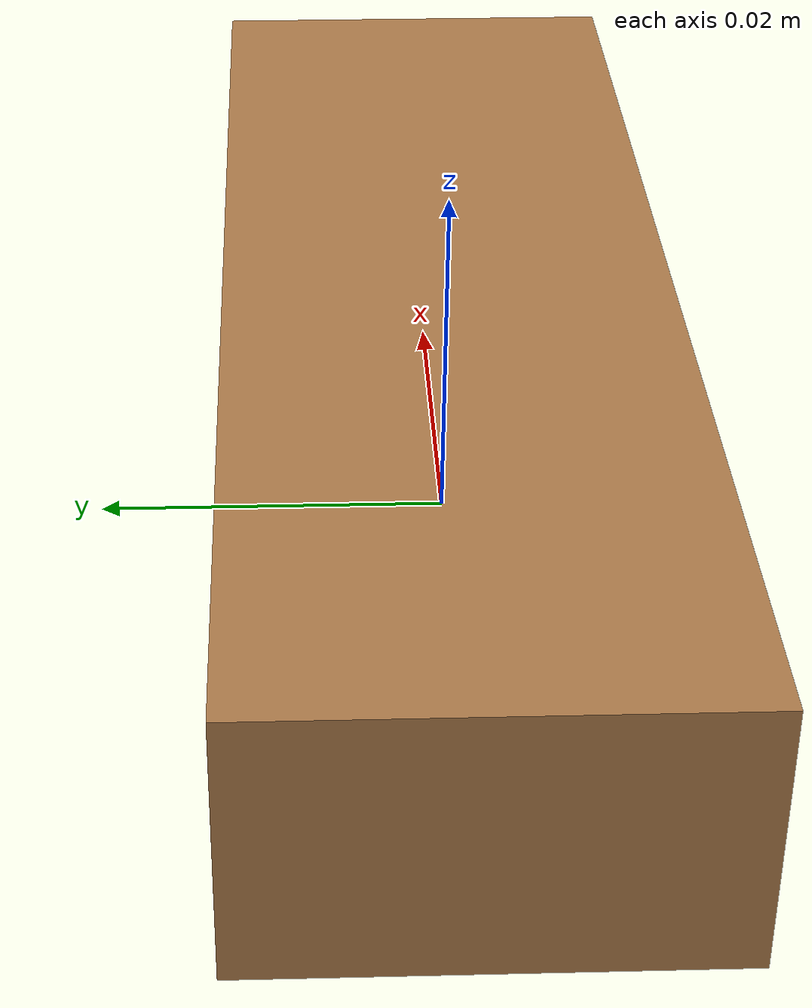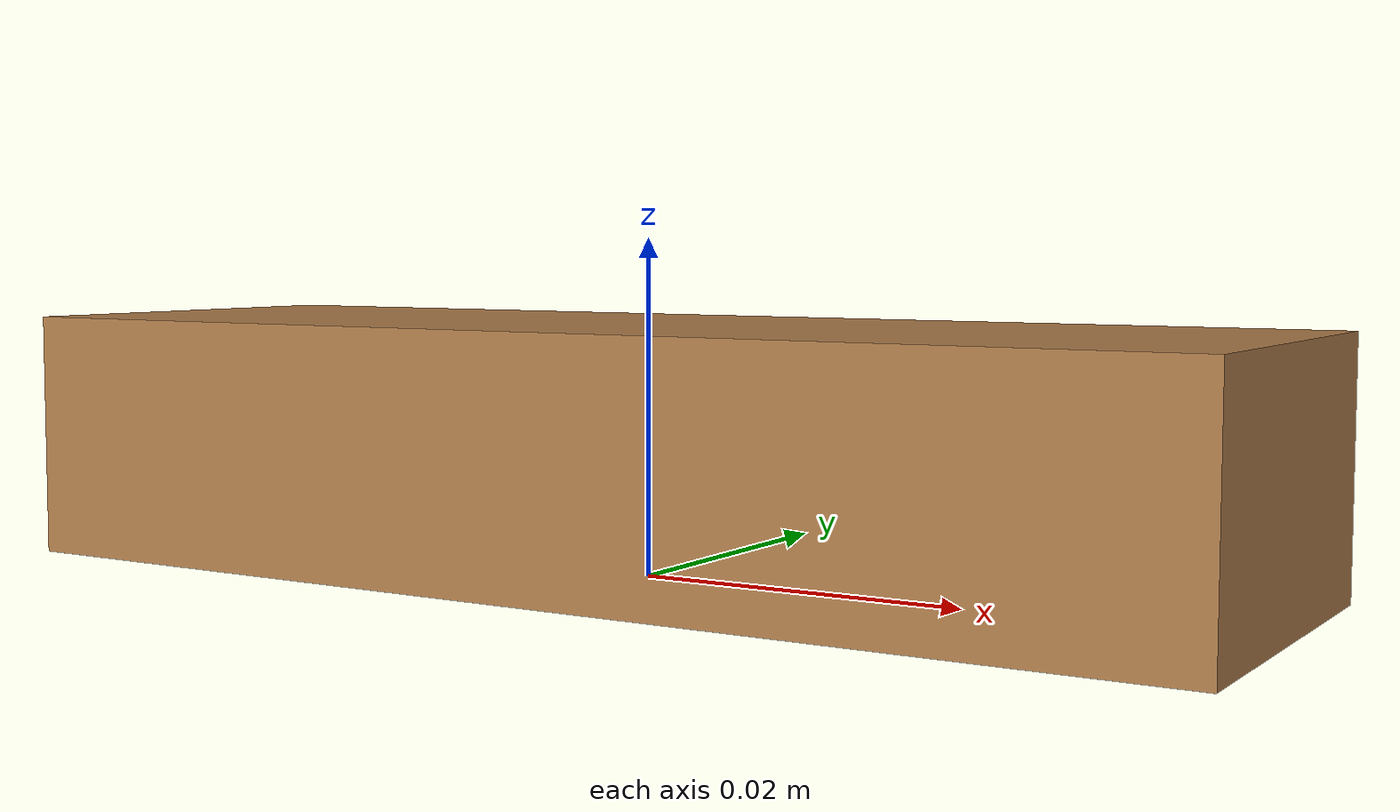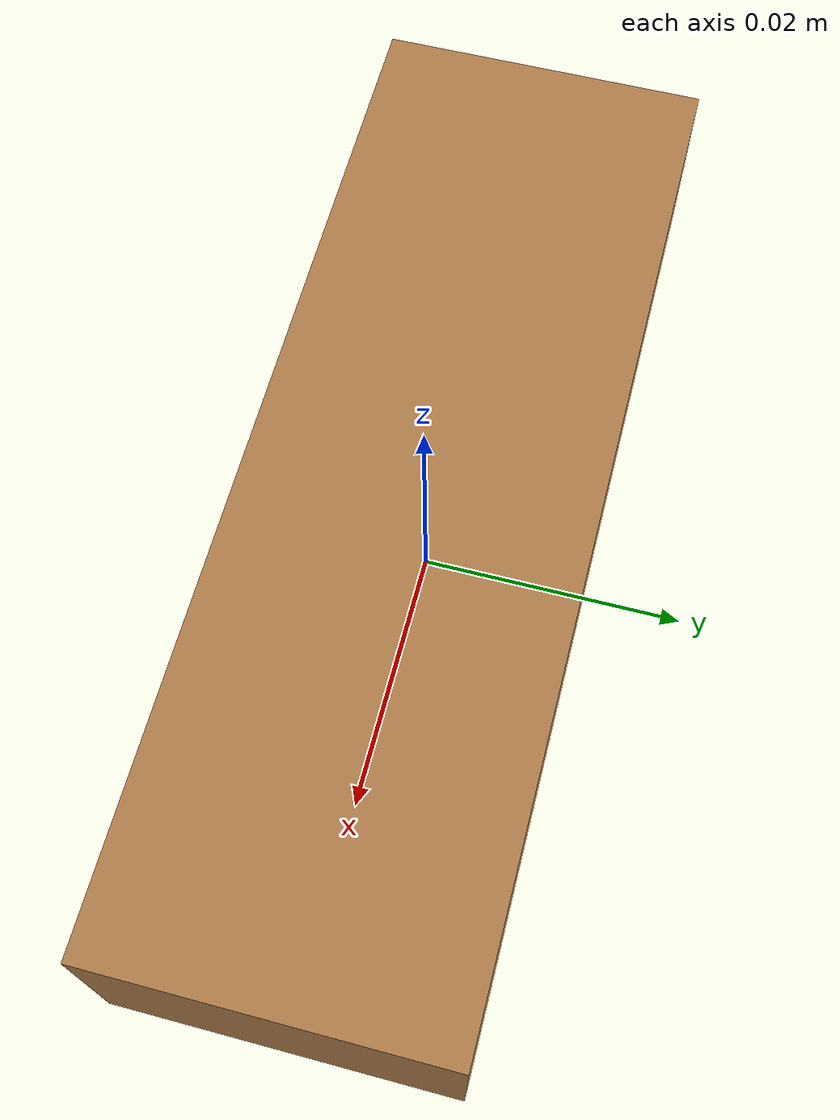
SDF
<?xml version="1.0" ?>

<sdf version="1.5">
  <model name="jenga_block">
    <link name="link">
      <pose>0 0 0.0075 0 0 0</pose>
      <inertial>
        <mass>0.0140625</mass>
        <inertia>
          <ixx>9.9609375e-07</ixx>
          <ixy>0</ixy>
          <ixz>0</ixz>
          <iyy>6.85546875e-06</iyy>
          <iyz>0</iyz>
          <izz>7.32421875e-06</izz>
        </inertia>
      </inertial>

      <collision name="collision">
        <geometry>
          <box>
            <size>0.075 0.025 0.015</size>
          </box>
        </geometry>
        <surface>
          <contact>
            <!-- Red Pine coefficients for longitudinal axis of the wood
                 according to:
                 http://www.fpl.fs.fed.us/documnts/fplgtr/fplgtr113/ch04.pdf -->
            <poissons_ratio>0.347</poissons_ratio>
            <elastic_modulus>8.8e+09</elastic_modulus>
            <ode>
              <kp>100000</kp>
              <kd>1</kd>
              <max_vel>1.0</max_vel>
              <min_depth>0.001</min_depth>
            </ode>
          </contact>
          <friction>
            <torsional>
              <coefficient>1.0</coefficient>
              <use_patch_radius>0</use_patch_radius>
              <surface_radius>0.05</surface_radius>
            </torsional>
          </friction>
        </surface>
      </collision>

      <visual name="visual">
        <geometry>
          <box>
            <size>0.075 0.025 0.015</size>
          </box>
        </geometry>
        <material>
          <script>
            <uri>file://media/materials/scripts/gazebo.material</uri>
            <name>Gazebo/Wood</name>
          </script>
        </material>
      </visual>

    </link>
  </model>
</sdf>
